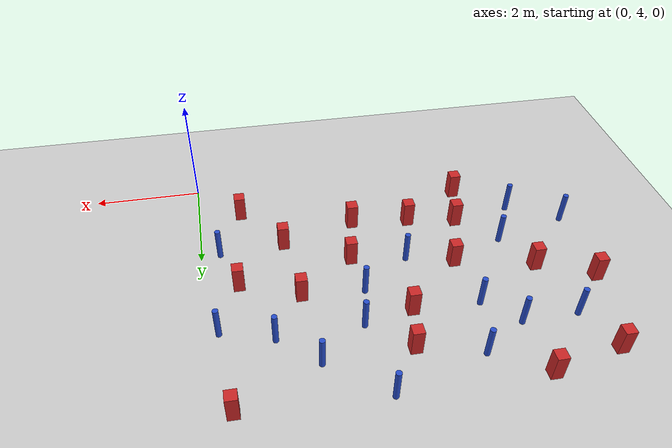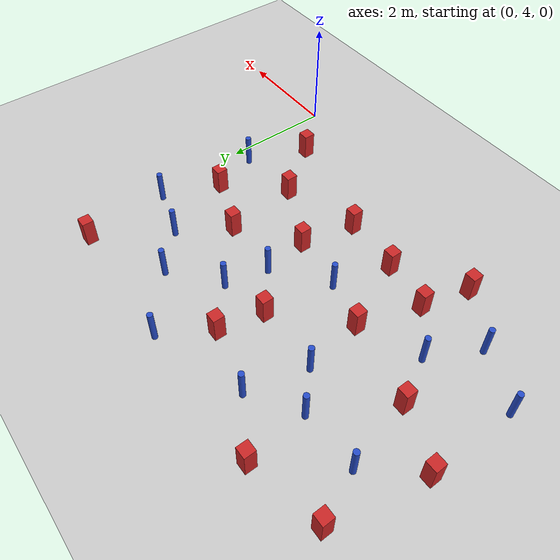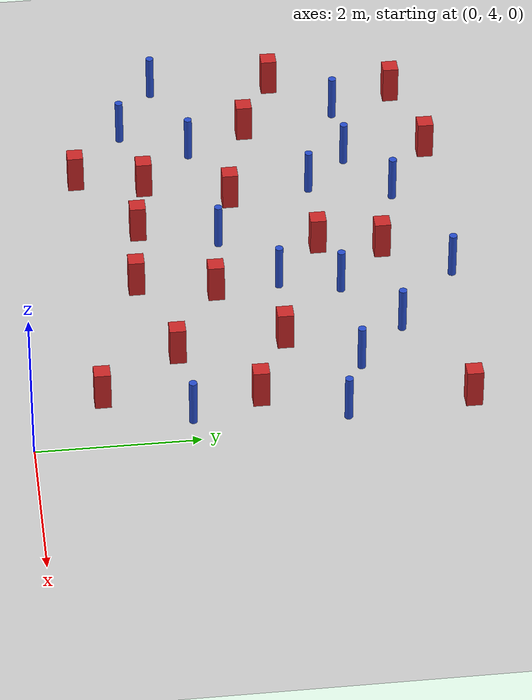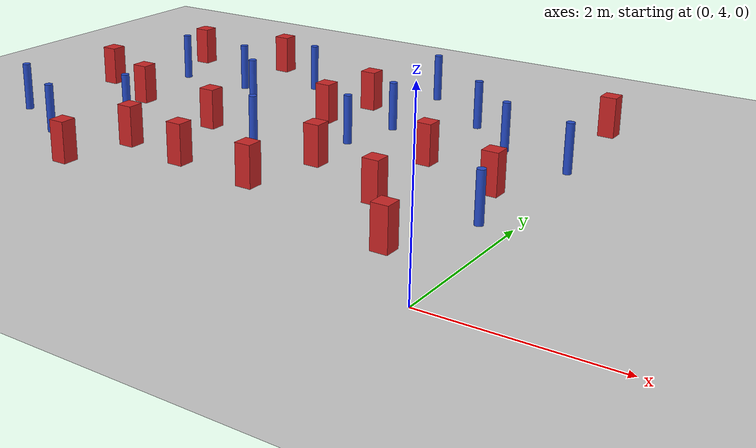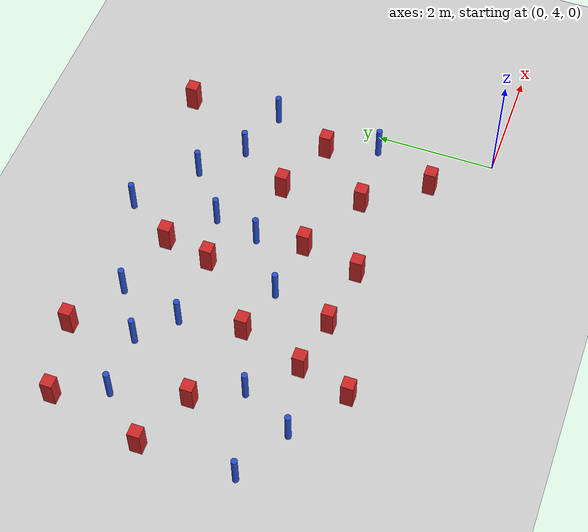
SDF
<sdf version="1.6">
 <world name="default">
  <model name="ground_plane">
   <static>1</static>
   <link name="link">
    <collision name="collision">
     <geometry><plane><normal>0 0 1</normal><size>100 100</size></plane></geometry>
     <surface><friction><ode><mu>100</mu><mu2>50</mu2></ode></friction></surface>
    </collision>
    <visual name="visual">
     <cast_shadows>0</cast_shadows>
     <geometry><plane><normal>0 0 1</normal><size>100 100</size></plane></geometry>
     <material>
      <script><uri>file://media/materials/scripts/gazebo.material</uri><name>Gazebo/Grey</name></script>
     </material>
    </visual>
   </link>
  </model>
  <model name="pole_obstacle0">
   <static>0</static>
   <link name="link">
    <pose>0 0 0.3 0 -0 0</pose>
    <inertial>
     <mass>1</mass>
     <inertia><ixx>0.145833</ixx><ixy>0</ixy><ixz>0</ixz><iyy>0.145833</iyy><iyz>0</iyz><izz>0.125</izz></inertia>
    </inertial>
    <collision name="collision">
     <geometry><cylinder><radius>0.05</radius><length>0.6</length></cylinder></geometry>
    </collision>
    <visual name="visual">
     <geometry><cylinder><radius>0.05</radius><length>0.6</length></cylinder></geometry>
     <material>
      <script><name>Gazebo/Blue</name><uri>file://media/materials/scripts/gazebo.material</uri></script>
     </material>
    </visual>
   </link>
   <pose>-6.20952 8.3445 -5e-06 0 0 -2.4e-05</pose>
  </model>
  <model name="square_post_obstacle7">
   <static>0</static>
   <link name="link">
    <pose>0 0 0.25 0 -0 0</pose>
    <inertial>
     <mass>100</mass>
     <inertia>
      <ixx>0.166667</ixx>
      <ixy>0</ixy>
      <ixz>0</ixz>
      <iyy>0.166667</iyy>
      <iyz>0</iyz>
      <izz>0.166667</izz>
     </inertia>
    </inertial>
    <collision name="collision"><geometry><box><size>0.2 0.2 0.5</size></box></geometry></collision>
    <visual name="visual">
     <geometry><box><size>0.2 0.2 0.5</size></box></geometry>
     <material>
      <script><name>Gazebo/Red</name><uri>file://media/materials/scripts/gazebo.material</uri></script>
     </material>
    </visual>
   </link>
   <pose>-5.09435 4.88945 0 -4e-06 1e-06 -0.000299</pose>
  </model>
  <model name="pole_obstacle15">
   <static>0</static>
   <link name="link">
    <pose>0 0 0.3 0 -0 0</pose>
    <inertial>
     <mass>1</mass>
     <inertia><ixx>0.145833</ixx><ixy>0</ixy><ixz>0</ixz><iyy>0.145833</iyy><iyz>0</iyz><izz>0.125</izz></inertia>
    </inertial>
    <collision name="collision">
     <geometry><cylinder><radius>0.05</radius><length>0.6</length></cylinder></geometry>
    </collision>
    <visual name="visual">
     <geometry><cylinder><radius>0.05</radius><length>0.6</length></cylinder></geometry>
     <material>
      <script><name>Gazebo/Blue</name><uri>file://media/materials/scripts/gazebo.material</uri></script>
     </material>
    </visual>
   </link>
   <pose>-4.40507 8.88915 -5e-06 0 -0 2.1e-05</pose>
  </model>
  <model name="square_post_obstacle13">
   <static>0</static>
   <link name="link">
    <pose>0 0 0.25 0 -0 0</pose>
    <inertial>
     <mass>100</mass>
     <inertia>
      <ixx>0.166667</ixx>
      <ixy>0</ixy>
      <ixz>0</ixz>
      <iyy>0.166667</iyy>
      <iyz>0</iyz>
      <izz>0.166667</izz>
     </inertia>
    </inertial>
    <collision name="collision"><geometry><box><size>0.2 0.2 0.5</size></box></geometry></collision>
    <visual name="visual">
     <geometry><box><size>0.2 0.2 0.5</size></box></geometry>
     <material>
      <script><name>Gazebo/Red</name><uri>file://media/materials/scripts/gazebo.material</uri></script>
     </material>
    </visual>
   </link>
   <pose>-1.67024 7.18728 0 -4e-06 1e-06 -0.000299</pose>
  </model>
  <model name="square_post_obstacle15">
   <static>0</static>
   <link name="link">
    <pose>0 0 0.25 0 -0 0</pose>
    <inertial>
     <mass>100</mass>
     <inertia>
      <ixx>0.166667</ixx>
      <ixy>0</ixy>
      <ixz>0</ixz>
      <iyy>0.166667</iyy>
      <iyz>0</iyz>
      <izz>0.166667</izz>
     </inertia>
    </inertial>
    <collision name="collision"><geometry><box><size>0.2 0.2 0.5</size></box></geometry></collision>
    <visual name="visual">
     <geometry><box><size>0.2 0.2 0.5</size></box></geometry>
     <material>
      <script><name>Gazebo/Red</name><uri>file://media/materials/scripts/gazebo.material</uri></script>
     </material>
    </visual>
   </link>
   <pose>-0.346076 9.31122 0 -4e-06 1e-06 -0.000299</pose>
  </model>
  <model name="pole_obstacle17">
   <static>0</static>
   <link name="link">
    <pose>0 0 0.3 0 -0 0</pose>
    <inertial>
     <mass>1</mass>
     <inertia><ixx>0.145833</ixx><ixy>0</ixy><ixz>0</ixz><iyy>0.145833</iyy><iyz>0</iyz><izz>0.125</izz></inertia>
    </inertial>
    <collision name="collision">
     <geometry><cylinder><radius>0.05</radius><length>0.6</length></cylinder></geometry>
    </collision>
    <visual name="visual">
     <geometry><cylinder><radius>0.05</radius><length>0.6</length></cylinder></geometry>
     <material>
      <script><name>Gazebo/Blue</name><uri>file://media/materials/scripts/gazebo.material</uri></script>
     </material>
    </visual>
   </link>
   <pose>-5.99466 5.53293 -5e-06 0 0 -6.5e-05</pose>
  </model>
  <model name="square_post_obstacle36">
   <static>0</static>
   <link name="link">
    <pose>0 0 0.25 0 -0 0</pose>
    <inertial>
     <mass>100</mass>
     <inertia>
      <ixx>0.166667</ixx>
      <ixy>0</ixy>
      <ixz>0</ixz>
      <iyy>0.166667</iyy>
      <iyz>0</iyz>
      <izz>0.166667</izz>
     </inertia>
    </inertial>
    <collision name="collision"><geometry><box><size>0.2 0.2 0.5</size></box></geometry></collision>
    <visual name="visual">
     <geometry><box><size>0.2 0.2 0.5</size></box></geometry>
     <material>
      <script><name>Gazebo/Red</name><uri>file://media/materials/scripts/gazebo.material</uri></script>
     </material>
    </visual>
   </link>
   <pose>-0.802271 4.87784 0 -4e-06 1e-06 -0.000299</pose>
  </model>
  <model name="pole_obstacle38">
   <static>0</static>
   <link name="link">
    <pose>0 0 0.3 0 -0 0</pose>
    <inertial>
     <mass>1</mass>
     <inertia><ixx>0.145833</ixx><ixy>0</ixy><ixz>0</ixz><iyy>0.145833</iyy><iyz>0</iyz><izz>0.125</izz></inertia>
    </inertial>
    <collision name="collision">
     <geometry><cylinder><radius>0.05</radius><length>0.6</length></cylinder></geometry>
    </collision>
    <visual name="visual">
     <geometry><cylinder><radius>0.05</radius><length>0.6</length></cylinder></geometry>
     <material>
      <script><name>Gazebo/Blue</name><uri>file://media/materials/scripts/gazebo.material</uri></script>
     </material>
    </visual>
   </link>
   <pose>-1.78259 8.6499 -5e-06 0 -0 3e-06</pose>
  </model>
  <model name="square_post_obstacle37">
   <static>0</static>
   <link name="link">
    <pose>0 0 0.25 0 -0 0</pose>
    <inertial>
     <mass>100</mass>
     <inertia>
      <ixx>0.166667</ixx>
      <ixy>0</ixy>
      <ixz>0</ixz>
      <iyy>0.166667</iyy>
      <iyz>0</iyz>
      <izz>0.166667</izz>
     </inertia>
    </inertial>
    <collision name="collision"><geometry><box><size>0.2 0.2 0.5</size></box></geometry></collision>
    <visual name="visual">
     <geometry><box><size>0.2 0.2 0.5</size></box></geometry>
     <material>
      <script><name>Gazebo/Red</name><uri>file://media/materials/scripts/gazebo.material</uri></script>
     </material>
    </visual>
   </link>
   <pose>-5.29714 9.43185 0 -4e-06 1e-06 -0.000299</pose>
  </model>
  <model name="square_post_obstacle38">
   <static>0</static>
   <link name="link">
    <pose>0 0 0.25 0 -0 0</pose>
    <inertial>
     <mass>100</mass>
     <inertia>
      <ixx>0.166667</ixx>
      <ixy>0</ixy>
      <ixz>0</ixz>
      <iyy>0.166667</iyy>
      <iyz>0</iyz>
      <izz>0.166667</izz>
     </inertia>
    </inertial>
    <collision name="collision"><geometry><box><size>0.2 0.2 0.5</size></box></geometry></collision>
    <visual name="visual">
     <geometry><box><size>0.2 0.2 0.5</size></box></geometry>
     <material>
      <script><name>Gazebo/Red</name><uri>file://media/materials/scripts/gazebo.material</uri></script>
     </material>
    </visual>
   </link>
   <pose>-2.68079 6.44468 0 -4e-06 1e-06 -0.000299</pose>
  </model>
  <model name="square_post_obstacle41">
   <static>0</static>
   <link name="link">
    <pose>0 0 0.25 0 -0 0</pose>
    <inertial>
     <mass>100</mass>
     <inertia>
      <ixx>0.166667</ixx>
      <ixy>0</ixy>
      <ixz>0</ixz>
      <iyy>0.166667</iyy>
      <iyz>0</iyz>
      <izz>0.166667</izz>
     </inertia>
    </inertial>
    <collision name="collision"><geometry><box><size>0.2 0.2 0.5</size></box></geometry></collision>
    <visual name="visual">
     <geometry><box><size>0.2 0.2 0.5</size></box></geometry>
     <material>
      <script><name>Gazebo/Red</name><uri>file://media/materials/scripts/gazebo.material</uri></script>
     </material>
    </visual>
   </link>
   <pose>-0.626917 6.77178 0 -4e-06 1e-06 -0.000299</pose>
  </model>
  <model name="pole_obstacle46">
   <static>0</static>
   <link name="link">
    <pose>0 0 0.3 0 -0 0</pose>
    <inertial>
     <mass>1</mass>
     <inertia><ixx>0.145833</ixx><ixy>0</ixy><ixz>0</ixz><iyy>0.145833</iyy><iyz>0</iyz><izz>0.125</izz></inertia>
    </inertial>
    <collision name="collision">
     <geometry><cylinder><radius>0.05</radius><length>0.6</length></cylinder></geometry>
    </collision>
    <visual name="visual">
     <geometry><cylinder><radius>0.05</radius><length>0.6</length></cylinder></geometry>
     <material>
      <script><name>Gazebo/Blue</name><uri>file://media/materials/scripts/gazebo.material</uri></script>
     </material>
    </visual>
   </link>
   <pose>-5.53856 6.38623 -5e-06 0 0 -6.4e-05</pose>
  </model>
  <model name="pole_obstacle53">
   <static>0</static>
   <link name="link">
    <pose>0 0 0.3 0 -0 0</pose>
    <inertial>
     <mass>1</mass>
     <inertia><ixx>0.145833</ixx><ixy>0</ixy><ixz>0</ixz><iyy>0.145833</iyy><iyz>0</iyz><izz>0.125</izz></inertia>
    </inertial>
    <collision name="collision">
     <geometry><cylinder><radius>0.05</radius><length>0.6</length></cylinder></geometry>
    </collision>
    <visual name="visual">
     <geometry><cylinder><radius>0.05</radius><length>0.6</length></cylinder></geometry>
     <material>
      <script><name>Gazebo/Blue</name><uri>file://media/materials/scripts/gazebo.material</uri></script>
     </material>
    </visual>
   </link>
   <pose>-0.214852 7.78259 -6e-06 0 0 -0.000161</pose>
  </model>
  <model name="square_post_obstacle54">
   <static>0</static>
   <link name="link">
    <pose>0 0 0.25 0 -0 0</pose>
    <inertial>
     <mass>100</mass>
     <inertia>
      <ixx>0.166667</ixx>
      <ixy>0</ixy>
      <ixz>0</ixz>
      <iyy>0.166667</iyy>
      <iyz>0</iyz>
      <izz>0.166667</izz>
     </inertia>
    </inertial>
    <collision name="collision"><geometry><box><size>0.2 0.2 0.5</size></box></geometry></collision>
    <visual name="visual">
     <geometry><box><size>0.2 0.2 0.5</size></box></geometry>
     <material>
      <script><name>Gazebo/Red</name><uri>file://media/materials/scripts/gazebo.material</uri></script>
     </material>
    </visual>
   </link>
   <pose>-1.52529 5.85384 0 -4e-06 1e-06 -0.000299</pose>
  </model>
  <model name="pole_obstacle57">
   <static>0</static>
   <link name="link">
    <pose>0 0 0.3 0 -0 0</pose>
    <inertial>
     <mass>1</mass>
     <inertia><ixx>0.145833</ixx><ixy>0</ixy><ixz>0</ixz><iyy>0.145833</iyy><iyz>0</iyz><izz>0.125</izz></inertia>
    </inertial>
    <collision name="collision">
     <geometry><cylinder><radius>0.05</radius><length>0.6</length></cylinder></geometry>
    </collision>
    <visual name="visual">
     <geometry><cylinder><radius>0.05</radius><length>0.6</length></cylinder></geometry>
     <material>
      <script><name>Gazebo/Blue</name><uri>file://media/materials/scripts/gazebo.material</uri></script>
     </material>
    </visual>
   </link>
   <pose>-1.11988 8.05863 -5e-06 0 0 -1.4e-05</pose>
  </model>
  <model name="pole_obstacle62">
   <static>0</static>
   <link name="link">
    <pose>0 0 0.3 0 -0 0</pose>
    <inertial>
     <mass>1</mass>
     <inertia><ixx>0.145833</ixx><ixy>0</ixy><ixz>0</ixz><iyy>0.145833</iyy><iyz>0</iyz><izz>0.125</izz></inertia>
    </inertial>
    <collision name="collision">
     <geometry><cylinder><radius>0.05</radius><length>0.6</length></cylinder></geometry>
    </collision>
    <visual name="visual">
     <geometry><cylinder><radius>0.05</radius><length>0.6</length></cylinder></geometry>
     <material>
      <script><name>Gazebo/Blue</name><uri>file://media/materials/scripts/gazebo.material</uri></script>
     </material>
    </visual>
   </link>
   <pose>-6.92216 6.01851 -5e-06 0 0 -6.4e-05</pose>
  </model>
  <model name="pole_obstacle72">
   <static>0</static>
   <link name="link">
    <pose>0 0 0.3 0 -0 0</pose>
    <inertial>
     <mass>1</mass>
     <inertia><ixx>0.145833</ixx><ixy>0</ixy><ixz>0</ixz><iyy>0.145833</iyy><iyz>0</iyz><izz>0.125</izz></inertia>
    </inertial>
    <collision name="collision">
     <geometry><cylinder><radius>0.05</radius><length>0.6</length></cylinder></geometry>
    </collision>
    <visual name="visual">
     <geometry><cylinder><radius>0.05</radius><length>0.6</length></cylinder></geometry>
     <material>
      <script><name>Gazebo/Blue</name><uri>file://media/materials/scripts/gazebo.material</uri></script>
     </material>
    </visual>
   </link>
   <pose>-2.77765 9.41835 -5e-06 0 -0 2.7e-05</pose>
  </model>
  <model name="square_post_obstacle71">
   <static>0</static>
   <link name="link">
    <pose>0 0 0.25 0 -0 0</pose>
    <inertial>
     <mass>100</mass>
     <inertia>
      <ixx>0.166667</ixx>
      <ixy>0</ixy>
      <ixz>0</ixz>
      <iyy>0.166667</iyy>
      <iyz>0</iyz>
      <izz>0.166667</izz>
     </inertia>
    </inertial>
    <collision name="collision"><geometry><box><size>0.2 0.2 0.5</size></box></geometry></collision>
    <visual name="visual">
     <geometry><box><size>0.2 0.2 0.5</size></box></geometry>
     <material>
      <script><name>Gazebo/Red</name><uri>file://media/materials/scripts/gazebo.material</uri></script>
     </material>
    </visual>
   </link>
   <pose>-5.92645 7.14715 0 -4e-06 1e-06 -0.000299</pose>
  </model>
  <model name="pole_obstacle75">
   <static>0</static>
   <link name="link">
    <pose>0 0 0.3 0 -0 0</pose>
    <inertial>
     <mass>1</mass>
     <inertia><ixx>0.145833</ixx><ixy>0</ixy><ixz>0</ixz><iyy>0.145833</iyy><iyz>0</iyz><izz>0.125</izz></inertia>
    </inertial>
    <collision name="collision">
     <geometry><cylinder><radius>0.05</radius><length>0.6</length></cylinder></geometry>
    </collision>
    <visual name="visual">
     <geometry><cylinder><radius>0.05</radius><length>0.6</length></cylinder></geometry>
     <material>
      <script><name>Gazebo/Blue</name><uri>file://media/materials/scripts/gazebo.material</uri></script>
     </material>
    </visual>
   </link>
   <pose>-5.20765 8.36648 -5e-06 0 0 -2.4e-05</pose>
  </model>
  <model name="square_post_obstacle75">
   <static>0</static>
   <link name="link">
    <pose>0 0 0.25 0 -0 0</pose>
    <inertial>
     <mass>100</mass>
     <inertia>
      <ixx>0.166667</ixx>
      <ixy>0</ixy>
      <ixz>0</ixz>
      <iyy>0.166667</iyy>
      <iyz>0</iyz>
      <izz>0.166667</izz>
     </inertia>
    </inertial>
    <collision name="collision"><geometry><box><size>0.2 0.2 0.5</size></box></geometry></collision>
    <visual name="visual">
     <geometry><box><size>0.2 0.2 0.5</size></box></geometry>
     <material>
      <script><name>Gazebo/Red</name><uri>file://media/materials/scripts/gazebo.material</uri></script>
     </material>
    </visual>
   </link>
   <pose>-3.47001 7.81263 0 -4e-06 1e-06 -0.000299</pose>
  </model>
  <model name="square_post_obstacle85">
   <static>0</static>
   <link name="link">
    <pose>0 0 0.25 0 -0 0</pose>
    <inertial>
     <mass>100</mass>
     <inertia>
      <ixx>0.166667</ixx>
      <ixy>0</ixy>
      <ixz>0</ixz>
      <iyy>0.166667</iyy>
      <iyz>0</iyz>
      <izz>0.166667</izz>
     </inertia>
    </inertial>
    <collision name="collision"><geometry><box><size>0.2 0.2 0.5</size></box></geometry></collision>
    <visual name="visual">
     <geometry><box><size>0.2 0.2 0.5</size></box></geometry>
     <material>
      <script><name>Gazebo/Red</name><uri>file://media/materials/scripts/gazebo.material</uri></script>
     </material>
    </visual>
   </link>
   <pose>-3.30175 8.60179 0 -4e-06 1e-06 -0.000299</pose>
  </model>
  <model name="square_post_obstacle88">
   <static>0</static>
   <link name="link">
    <pose>0 0 0.25 0 -0 0</pose>
    <inertial>
     <mass>100</mass>
     <inertia>
      <ixx>0.166667</ixx>
      <ixy>0</ixy>
      <ixz>0</ixz>
      <iyy>0.166667</iyy>
      <iyz>0</iyz>
      <izz>0.166667</izz>
     </inertia>
    </inertial>
    <collision name="collision"><geometry><box><size>0.2 0.2 0.5</size></box></geometry></collision>
    <visual name="visual">
     <geometry><box><size>0.2 0.2 0.5</size></box></geometry>
     <material>
      <script><name>Gazebo/Red</name><uri>file://media/materials/scripts/gazebo.material</uri></script>
     </material>
    </visual>
   </link>
   <pose>-6.89609 7.58093 0 -4e-06 1e-06 -0.000299</pose>
  </model>
  <model name="square_post_obstacle92">
   <static>0</static>
   <link name="link">
    <pose>0 0 0.25 0 -0 0</pose>
    <inertial>
     <mass>100</mass>
     <inertia>
      <ixx>0.166667</ixx>
      <ixy>0</ixy>
      <ixz>0</ixz>
      <iyy>0.166667</iyy>
      <iyz>0</iyz>
      <izz>0.166667</izz>
     </inertia>
    </inertial>
    <collision name="collision"><geometry><box><size>0.2 0.2 0.5</size></box></geometry></collision>
    <visual name="visual">
     <geometry><box><size>0.2 0.2 0.5</size></box></geometry>
     <material>
      <script><name>Gazebo/Red</name><uri>file://media/materials/scripts/gazebo.material</uri></script>
     </material>
    </visual>
   </link>
   <pose>-3.96615 5.58844 0 -4e-06 1e-06 -0.000299</pose>
  </model>
  <model name="pole_obstacle92">
   <static>0</static>
   <link name="link">
    <pose>0 0 0.3 0 -0 0</pose>
    <inertial>
     <mass>1</mass>
     <inertia><ixx>0.145833</ixx><ixy>0</ixy><ixz>0</ixz><iyy>0.145833</iyy><iyz>0</iyz><izz>0.125</izz></inertia>
    </inertial>
    <collision name="collision">
     <geometry><cylinder><radius>0.05</radius><length>0.6</length></cylinder></geometry>
    </collision>
    <visual name="visual">
     <geometry><cylinder><radius>0.05</radius><length>0.6</length></cylinder></geometry>
     <material>
      <script><name>Gazebo/Blue</name><uri>file://media/materials/scripts/gazebo.material</uri></script>
     </material>
    </visual>
   </link>
   <pose>-2.60929 7.99892 -5e-06 0 -0 4.9e-05</pose>
  </model>
  <model name="square_post_obstacle107">
   <static>0</static>
   <link name="link">
    <pose>0 0 0.25 0 -0 0</pose>
    <inertial>
     <mass>100</mass>
     <inertia>
      <ixx>0.166667</ixx>
      <ixy>0</ixy>
      <ixz>0</ixz>
      <iyy>0.166667</iyy>
      <iyz>0</iyz>
      <izz>0.166667</izz>
     </inertia>
    </inertial>
    <collision name="collision"><geometry><box><size>0.2 0.2 0.5</size></box></geometry></collision>
    <visual name="visual">
     <geometry><box><size>0.2 0.2 0.5</size></box></geometry>
     <material>
      <script><name>Gazebo/Red</name><uri>file://media/materials/scripts/gazebo.material</uri></script>
     </material>
    </visual>
   </link>
   <pose>-2.89181 5.47439 0 -4e-06 1e-06 -0.000299</pose>
  </model>
  <model name="square_post_obstacle110">
   <static>0</static>
   <link name="link">
    <pose>0 0 0.25 0 -0 0</pose>
    <inertial>
     <mass>100</mass>
     <inertia>
      <ixx>0.166667</ixx>
      <ixy>0</ixy>
      <ixz>0</ixz>
      <iyy>0.166667</iyy>
      <iyz>0</iyz>
      <izz>0.166667</izz>
     </inertia>
    </inertial>
    <collision name="collision"><geometry><box><size>0.2 0.2 0.5</size></box></geometry></collision>
    <visual name="visual">
     <geometry><box><size>0.2 0.2 0.5</size></box></geometry>
     <material>
      <script><name>Gazebo/Red</name><uri>file://media/materials/scripts/gazebo.material</uri></script>
     </material>
    </visual>
   </link>
   <pose>-6.5491 9.15141 0 -4e-06 1e-06 -0.000299</pose>
  </model>
  <model name="square_post_obstacle118">
   <static>0</static>
   <link name="link">
    <pose>0 0 0.25 0 -0 0</pose>
    <inertial>
     <mass>100</mass>
     <inertia>
      <ixx>0.166667</ixx>
      <ixy>0</ixy>
      <ixz>0</ixz>
      <iyy>0.166667</iyy>
      <iyz>0</iyz>
      <izz>0.166667</izz>
     </inertia>
    </inertial>
    <collision name="collision"><geometry><box><size>0.2 0.2 0.5</size></box></geometry></collision>
    <visual name="visual">
     <geometry><box><size>0.2 0.2 0.5</size></box></geometry>
     <material>
      <script><name>Gazebo/Red</name><uri>file://media/materials/scripts/gazebo.material</uri></script>
     </material>
    </visual>
   </link>
   <pose>-4.86645 5.74638 0 -4e-06 1e-06 -0.000299</pose>
  </model>
  <model name="pole_obstacle107">
   <static>0</static>
   <link name="link">
    <pose>0 0 0.3 0 -0 0</pose>
    <inertial>
     <mass>1</mass>
     <inertia><ixx>0.145833</ixx><ixy>0</ixy><ixz>0</ixz><iyy>0.145833</iyy><iyz>0</iyz><izz>0.125</izz></inertia>
    </inertial>
    <collision name="collision">
     <geometry><cylinder><radius>0.05</radius><length>0.6</length></cylinder></geometry>
    </collision>
    <visual name="visual">
     <geometry><cylinder><radius>0.05</radius><length>0.6</length></cylinder></geometry>
     <material>
      <script><name>Gazebo/Blue</name><uri>file://media/materials/scripts/gazebo.material</uri></script>
     </material>
    </visual>
   </link>
   <pose>-4.66045 7.84411 -5e-06 0 -0 5e-06</pose>
  </model>
  <model name="pole_obstacle111">
   <static>0</static>
   <link name="link">
    <pose>0 0 0.3 0 -0 0</pose>
    <inertial>
     <mass>1</mass>
     <inertia><ixx>0.145833</ixx><ixy>0</ixy><ixz>0</ixz><iyy>0.145833</iyy><iyz>0</iyz><izz>0.125</izz></inertia>
    </inertial>
    <collision name="collision">
     <geometry><cylinder><radius>0.05</radius><length>0.6</length></cylinder></geometry>
    </collision>
    <visual name="visual">
     <geometry><cylinder><radius>0.05</radius><length>0.6</length></cylinder></geometry>
     <material>
      <script><name>Gazebo/Blue</name><uri>file://media/materials/scripts/gazebo.material</uri></script>
     </material>
    </visual>
   </link>
   <pose>-0.344578 5.92766 -5e-06 0 -0 2.1e-05</pose>
  </model>
  <model name="pole_obstacle114">
   <static>0</static>
   <link name="link">
    <pose>0 0 0.3 0 -0 0</pose>
    <inertial>
     <mass>1</mass>
     <inertia><ixx>0.145833</ixx><ixy>0</ixy><ixz>0</ixz><iyy>0.145833</iyy><iyz>0</iyz><izz>0.125</izz></inertia>
    </inertial>
    <collision name="collision">
     <geometry><cylinder><radius>0.05</radius><length>0.6</length></cylinder></geometry>
    </collision>
    <visual name="visual">
     <geometry><cylinder><radius>0.05</radius><length>0.6</length></cylinder></geometry>
     <material>
      <script><name>Gazebo/Blue</name><uri>file://media/materials/scripts/gazebo.material</uri></script>
     </material>
    </visual>
   </link>
   <pose>-3.67947 6.58211 -5e-06 0 0 -6.7e-05</pose>
  </model>
  <model name="square_post_obstacle123">
   <static>0</static>
   <link name="link">
    <pose>0 0 0.25 0 -0 0</pose>
    <inertial>
     <mass>100</mass>
     <inertia>
      <ixx>0.166667</ixx>
      <ixy>0</ixy>
      <ixz>0</ixz>
      <iyy>0.166667</iyy>
      <iyz>0</iyz>
      <izz>0.166667</izz>
     </inertia>
    </inertial>
    <collision name="collision"><geometry><box><size>0.2 0.2 0.5</size></box></geometry></collision>
    <visual name="visual">
     <geometry><box><size>0.2 0.2 0.5</size></box></geometry>
     <material>
      <script><name>Gazebo/Red</name><uri>file://media/materials/scripts/gazebo.material</uri></script>
     </material>
    </visual>
   </link>
   <pose>-4.51366 6.81506 0 -4e-06 1e-06 -0.000299</pose>
  </model>
  <model name="pole_obstacle115">
   <static>0</static>
   <link name="link">
    <pose>0 0 0.3 0 -0 0</pose>
    <inertial>
     <mass>1</mass>
     <inertia><ixx>0.145833</ixx><ixy>0</ixy><ixz>0</ixz><iyy>0.145833</iyy><iyz>0</iyz><izz>0.125</izz></inertia>
    </inertial>
    <collision name="collision">
     <geometry><cylinder><radius>0.05</radius><length>0.6</length></cylinder></geometry>
    </collision>
    <visual name="visual">
     <geometry><cylinder><radius>0.05</radius><length>0.6</length></cylinder></geometry>
     <material>
      <script><name>Gazebo/Blue</name><uri>file://media/materials/scripts/gazebo.material</uri></script>
     </material>
    </visual>
   </link>
   <pose>-2.77734 7.24441 -5e-06 0 0 -6.7e-05</pose>
  </model>
 </world>
</sdf>
